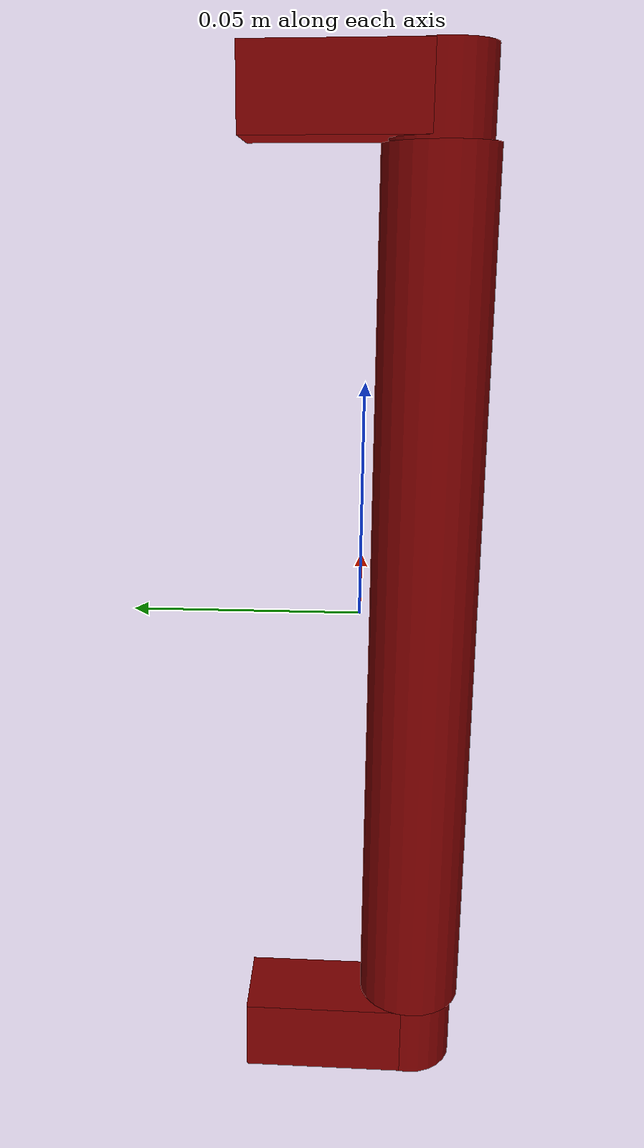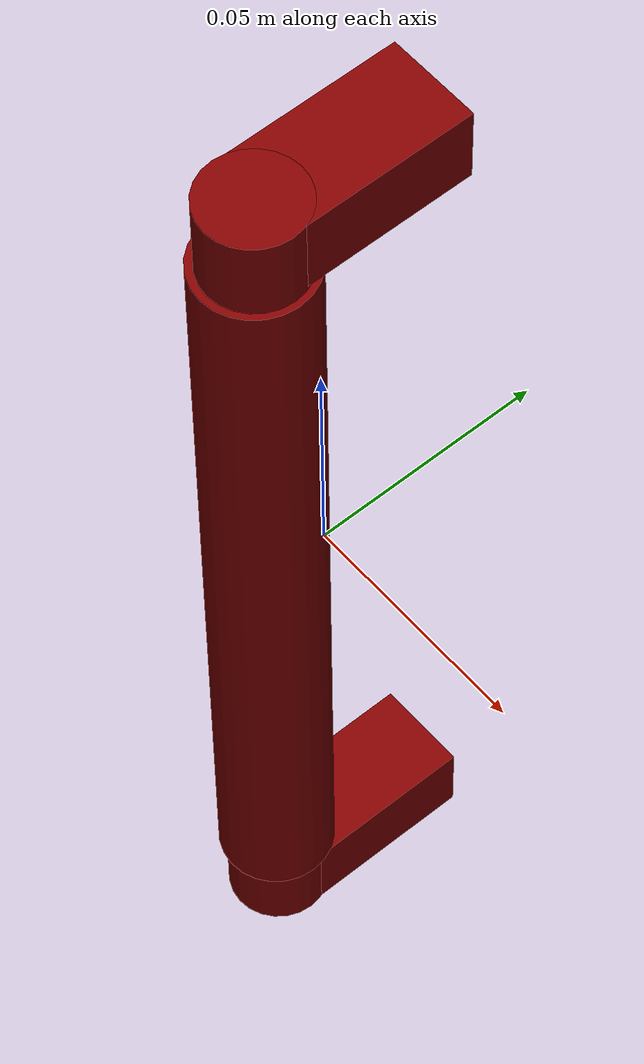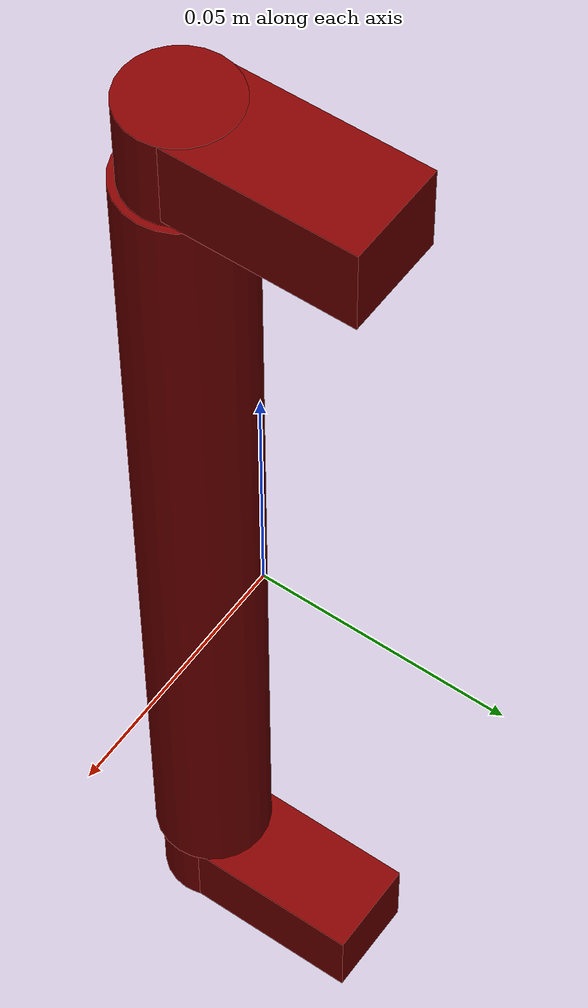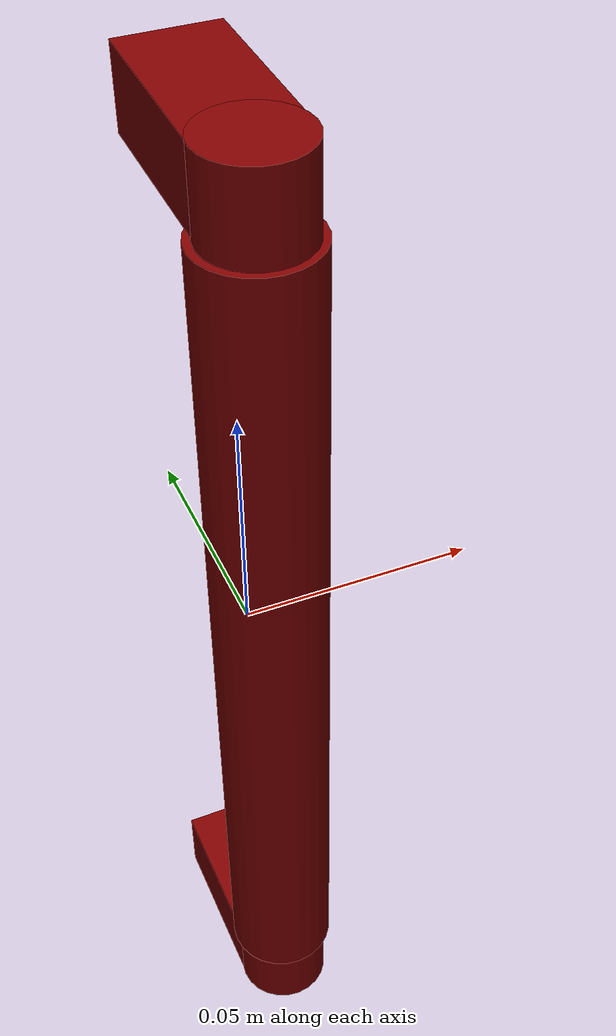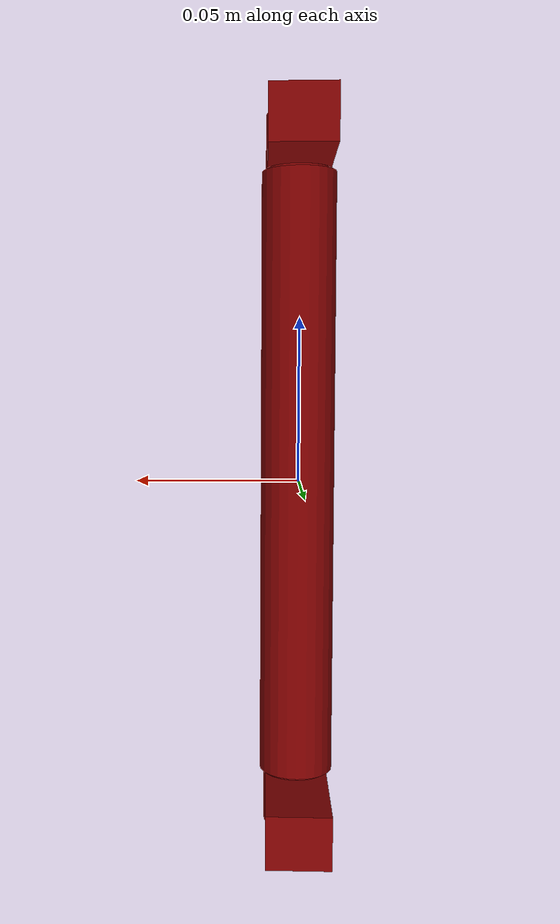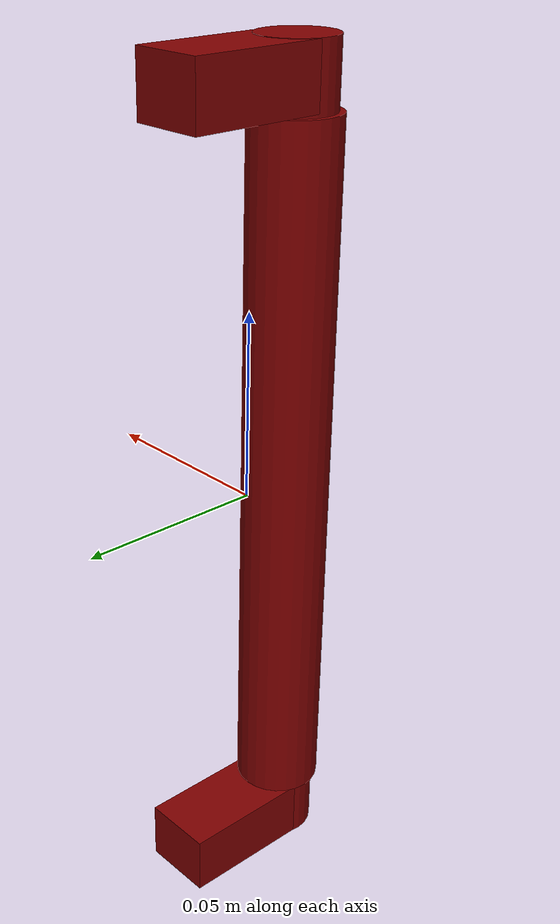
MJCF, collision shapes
<?xml version='1.0' encoding='UTF-8'?>
<mujoco model="model">
  <option timestep="0.002" gravity="0.0 0.0 -9.81"/>
  <compiler angle="radian"/>
  <asset>
    <mesh file="visuals/CabinetHandle049.obj" name="CabinetHandle049_vis"/>
    <texture file="visuals/T_BC001.png" name="tex" type="2d"/>
    <material name="mat" rgba="1 1 1 1.0" texture="tex" shininess="0.4472135901451111" specular="0.3103448502657381"/>
  </asset>
  <default>
    <default class="visual">
      <geom conaffinity="0" contype="0" group="1" type="mesh"/>
    </default>
    <default class="collision">
      <geom group="0" rgba="0.5 0 0 0.5" density="1.0" solref="0.004 1" solimp="0.998 0.998 0.001"/>
    </default>
    <default class="spawn">
      <geom group="0" rgba="1 1 1 0.5" contype="0" conaffinity="0"/>
      <site group="0" rgba="1 1 1 0.5"/>
    </default>
    <default class="region">
      <geom group="1" conaffinity="0" contype="0" rgba="0 1 0 0" mass="0"/>
    </default>
  </default>
  <worldbody>
    <body>
      <body name="object">
        <geom mesh="CabinetHandle049_vis" type="mesh" solimp="0.998 0.998 0.001" solref="0.001 1" friction="0.95 0.3 0.1" class="visual" material="mat"/>
        <geom type="box" pos="-0.00000050 0.00532176 0.10485332" size="0.009910544380545616 0.01975945569574833 0.008152948692440987" quat="1.0 0.0 0.0 0.0" class="collision"/>
        <geom type="box" pos="-0.00000050 0.00532176 -0.10491797" size="0.009910546243190765 0.01975945569574833 0.008228539489209652" quat="1.0 0.0 0.0 0.0" class="collision"/>
        <geom type="cylinder" pos="-0.00000050 -0.01372670 0.00000000" size="0.01173787098377943 0.09582595527172089" quat="1.0 0.0 0.0 0.0" class="collision"/>
        <geom type="cylinder" pos="0.00013320 -0.01366021 0.10448337" size="0.010331730358302593 0.008663144893944263" quat="1.0 0.0 0.0 0.0" class="collision"/>
        <geom type="cylinder" pos="0.00015994 -0.01366021 -0.10437946" size="0.010331730358302593 0.0087670236825943" quat="1.0 0.0 0.0 0.0" class="collision"/>
        <geom class="region" name="reg_main" type="box" pos="-3.9500000000025626e-07 -7.99999999995249e-08 5.000000004307115e-09" size="0.012526395 0.02629572 0.11414650500000001"/>
      </body>
    </body>
  </worldbody>
  <actuator/>
</mujoco>
